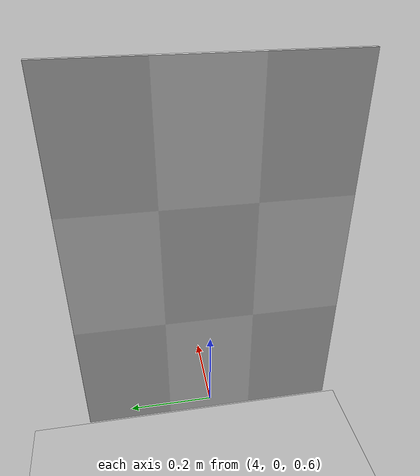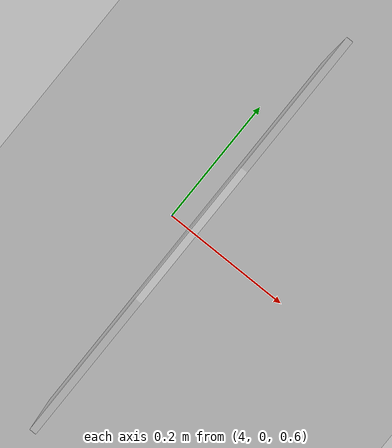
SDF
<sdf version="1.7">
 <world name="default">
  <physics type="ode">
   <ode>
    <solver>
     <type>quick</type>
     <iters>10</iters>
     <sor>1.3</sor>
     <use_dynamic_moi_rescaling>0</use_dynamic_moi_rescaling>
    </solver>
    <constraints>
     <cfm>1e-05</cfm>
     <erp>0.2</erp>
     <contact_max_correcting_vel>1000</contact_max_correcting_vel>
     <contact_surface_layer>0.01</contact_surface_layer>
    </constraints>
   </ode>
   <max_step_size>0.004</max_step_size>
   <real_time_factor>1</real_time_factor>
   <real_time_update_rate>250</real_time_update_rate>
  </physics>
  <light name="sun" type="directional">
   <cast_shadows>0</cast_shadows>
   <pose>0 0 100 0 -0 0</pose>
   <diffuse>0.8 0.8 0.8 1</diffuse>
   <specular>0.9 0.9 0.9 1</specular>
   <attenuation>
    <range>1000</range>
    <constant>0.9</constant>
    <linear>0.01</linear>
    <quadratic>0.001</quadratic>
   </attenuation>
   <direction>0.2 0.2 -0.9</direction>
   <spot><inner_angle>0</inner_angle><outer_angle>0</outer_angle><falloff>0</falloff></spot>
  </light>
  <scene><shadows>0</shadows><ambient>0.4 0.4 0.4 1</ambient><background>0.7 0.7 0.7 1</background></scene>
  <model name="ground_plane">
   <static>1</static>
   <link name="link">
    <collision name="collision">
     <geometry><plane><normal>0 0 1</normal><size>100 100</size></plane></geometry>
     <surface>
      <contact><collide_bitmask>65535</collide_bitmask></contact>
      <friction><ode><mu>100</mu><mu2>50</mu2></ode></friction>
     </surface>
    </collision>
    <visual name="visual">
     <cast_shadows>0</cast_shadows>
     <geometry><plane><normal>0 0 1</normal><size>100 100</size></plane></geometry>
     <material>
      <script><uri>file://media/materials/scripts/gazebo.material</uri><name>Gazebo/Grey</name></script>
     </material>
    </visual>
   </link>
  </model>
  <model name="texture">
   <static>1</static>
   <link name="prometheus_logo">
    <visual name="visual">
     <cast_shadows>0</cast_shadows>
     <geometry><box><size>10 10 0.01</size></box></geometry>
     <material>
      <script><uri>model://prometheus_texture/texture.material</uri><name>prometheus_logo2</name></script>
     </material>
    </visual>
   </link>
  </model>
  <gravity>0 0 -9.8066</gravity>
  <magnetic_field>6e-06 2.3e-05 -4.2e-05</magnetic_field>
  <atmosphere type="adiabatic"/>
  <spherical_coordinates>
   <surface_model>EARTH_WGS84</surface_model>
   <latitude_deg>0</latitude_deg>
   <longitude_deg>0</longitude_deg>
   <elevation>0</elevation>
   <heading_deg>0</heading_deg>
  </spherical_coordinates>
  <model name="landmove_0">
   <link name="link_2">
    <inertial>
     <mass>1</mass>
     <inertia>
      <ixx>0.166667</ixx>
      <ixy>0</ixy>
      <ixz>0</ixz>
      <iyy>0.166667</iyy>
      <iyz>0</iyz>
      <izz>0.166667</izz>
     </inertia>
    </inertial>
    <pose>0 0 0 0 -1.56506 0</pose>
    <visual name="visual">
     <geometry>
      <mesh>
       <uri>/home/amov/Prometheus/Simulator/gazebo_simulator/gazebo_worlds/detection_worlds/Tracking_QR/Tracking_QR.dae</uri>
       <scale>1 1 1</scale>
      </mesh>
     </geometry>
    </visual>
    <collision name="collision">
     <geometry>
      <mesh>
       <uri>/home/amov/Prometheus/Simulator/gazebo_simulator/gazebo_worlds/detection_worlds/Tracking_QR/Tracking_QR.dae</uri>
       <scale>1 1 1</scale>
      </mesh>
     </geometry>
     <surface>
      <friction>
       <ode><mu>1</mu><mu2>1</mu2><fdir1>0 0 0</fdir1><slip1>0</slip1><slip2>0</slip2></ode>
       <torsional>
        <coefficient>1</coefficient>
        <patch_radius>0</patch_radius>
        <surface_radius>0</surface_radius>
        <use_patch_radius>1</use_patch_radius>
        <ode><slip>0</slip></ode>
       </torsional>
      </friction>
      <bounce><restitution_coefficient>0</restitution_coefficient><threshold>1e+06</threshold></bounce>
      <contact>
       <collide_without_contact>0</collide_without_contact>
       <collide_without_contact_bitmask>1</collide_without_contact_bitmask>
       <collide_bitmask>1</collide_bitmask>
       <ode>
        <soft_cfm>0</soft_cfm>
        <soft_erp>0.2</soft_erp>
        <kp>1e+13</kp>
        <kd>1</kd>
        <max_vel>0.01</max_vel>
        <min_depth>0</min_depth>
       </ode>
       <bullet>
        <split_impulse>1</split_impulse>
        <split_impulse_penetration_threshold>-0.01</split_impulse_penetration_threshold>
        <soft_cfm>0</soft_cfm>
        <soft_erp>0.2</soft_erp>
        <kp>1e+13</kp>
        <kd>1</kd>
       </bullet>
      </contact>
     </surface>
    </collision>
   </link>
   <static>1</static>
   <plugin name="liblandmove" filename="liblandmove.so"/>
   <pose>4.03632 -0.004779 0.982964 0 -0 0</pose>
  </model>
  <light name="user_spot_light_0" type="spot">
   <pose>-3.88384 -0.067113 1 0 -0 0</pose>
   <diffuse>0.5 0.5 0.5 1</diffuse>
   <specular>0.1 0.1 0.1 1</specular>
   <direction>0 0 -1</direction>
   <attenuation>
    <range>20</range>
    <constant>0.5</constant>
    <linear>0.01</linear>
    <quadratic>0.001</quadratic>
   </attenuation>
   <cast_shadows>0</cast_shadows>
   <spot><inner_angle>0.6</inner_angle><outer_angle>1</outer_angle><falloff>1</falloff></spot>
  </light>
  <light name="user_spot_light_0_clone" type="spot">
   <pose>-4.17983 2.10459 3 0 -0 0</pose>
   <diffuse>0.8 0.8 0.8 1</diffuse>
   <specular>0.819608 0.819608 0.819608 1</specular>
   <direction>0 0 -1</direction>
   <attenuation>
    <range>1000</range>
    <constant>0.9</constant>
    <linear>0.01</linear>
    <quadratic>0.001</quadratic>
   </attenuation>
   <cast_shadows>0</cast_shadows>
   <spot><inner_angle>0.6</inner_angle><outer_angle>1</outer_angle><falloff>1</falloff></spot>
  </light>
  <light name="user_spot_light_0_clone_0" type="spot">
   <pose>-2.6386 -2.55292 3 0 -0 0</pose>
   <diffuse>0.8 0.8 0.8 1</diffuse>
   <specular>0.819608 0.819608 0.819608 1</specular>
   <direction>0 0 -1</direction>
   <attenuation>
    <range>1000</range>
    <constant>0.9</constant>
    <linear>0.01</linear>
    <quadratic>0.001</quadratic>
   </attenuation>
   <cast_shadows>0</cast_shadows>
   <spot><inner_angle>0.6</inner_angle><outer_angle>1</outer_angle><falloff>1</falloff></spot>
  </light>
 </world>
</sdf>
